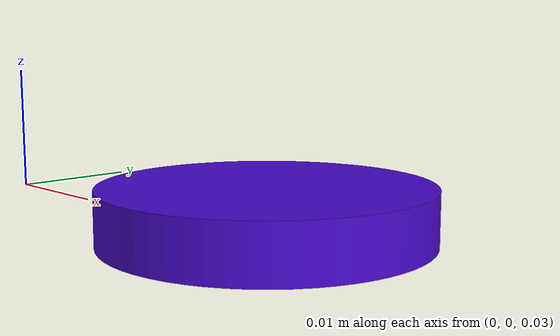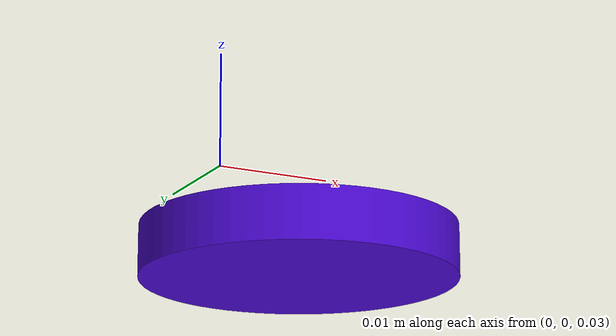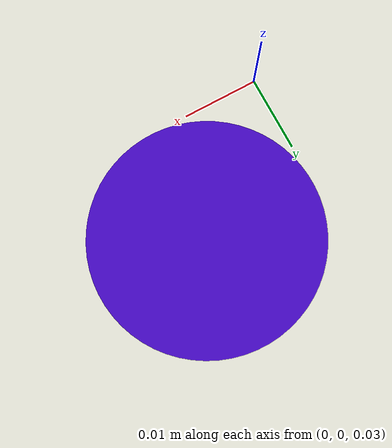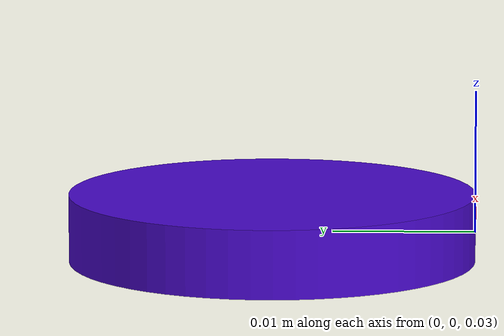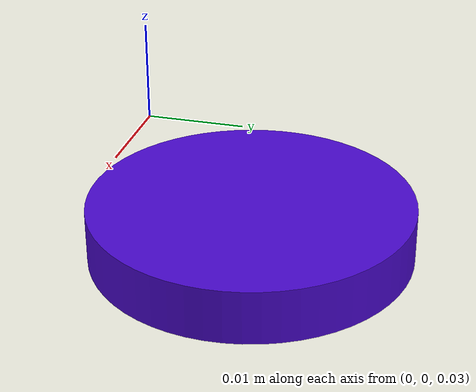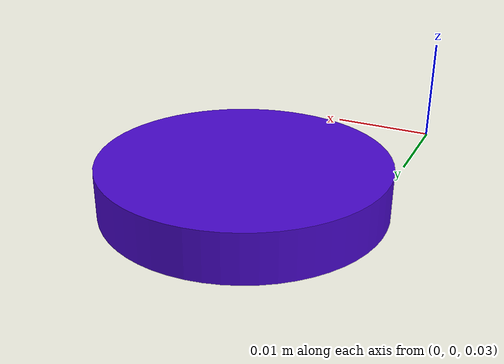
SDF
<?xml version="1.0" ?>
<sdf version="1.6">

<!-- Cylinders -->
  <model name="cylinder_purple">
    <static>false</static>
    <link name="link">
      <pose>0 0 0.025 0 0 0</pose>
      <inertial>
          <mass>0.02</mass>
          <inertia>
            <ixx>1.666666666666667e-07</ixx>
            <ixy>0</ixy>
            <ixz>0</ixz>
            <iyy>1.666666666666667e-07</iyy>
            <iyz>0</iyz>
            <izz>2.5e-07</izz>
          </inertia>
      </inertial>
      <collision name="collision">
          <geometry>
            <cylinder>
              <radius>0.005</radius>
              <length>0.005</length>
            </cylinder>
          </geometry>
          <surface>
            <contact>
                <poissons_ratio>0.347</poissons_ratio>
                <elastic_modulus>8.8e+09</elastic_modulus>
                <ode>
                  <kp>100000</kp>
                  <kd>1</kd>
                  <max_vel>1.0</max_vel>
                  <min_depth>0.001</min_depth>
                </ode>
            </contact>
            <friction>
              <torsional>
                <coefficient>1.0</coefficient>
                <use_patch_radius>0</use_patch_radius>
                <surface_radius>0.05</surface_radius>
              </torsional>
            </friction>
          </surface>
      </collision>
      <visual name="visual">
         <geometry>
            <mesh>
               <uri>model://cylinder/purple/cylinder_purple.dae</uri>
               <scale>3 3 1 </scale>
            </mesh>
         </geometry>
      </visual>
    </link>
  </model>
</sdf>
